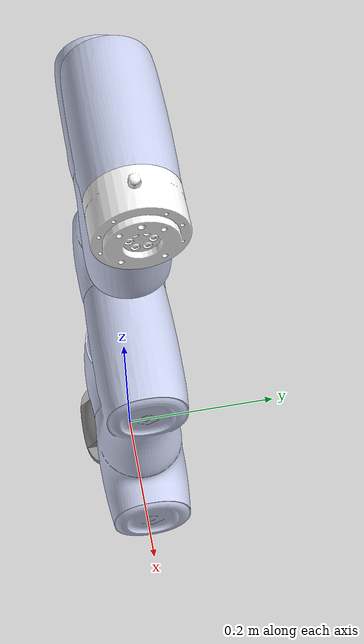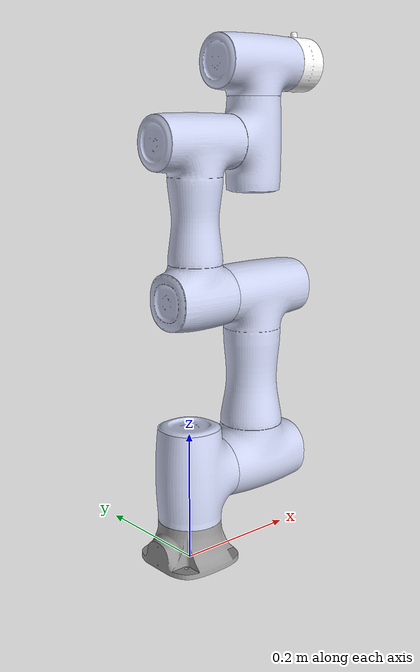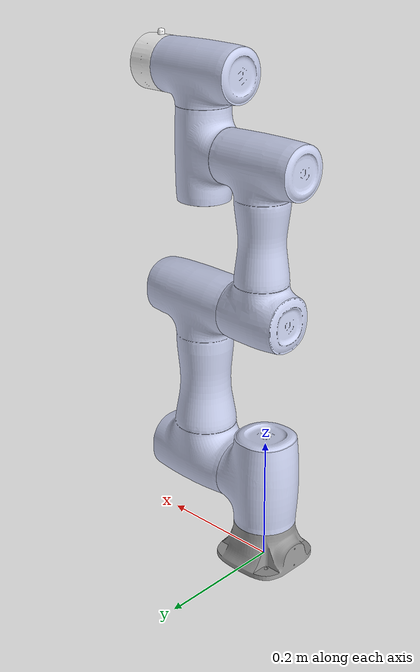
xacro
<?xml version="1.0"?>
<robot xmlns:xacro="http://www.ros.org/wiki/xacro" name="cr3af_robot">
    <xacro:arg name="initial_positions_file" default="initial_positions.yaml" />

    <!-- Import cr3af_robot urdf file -->
    <xacro:include filename="$(find dobot_rviz)/urdf/cr3af_robot.urdf" />

    <!-- Import control_xacro -->
    <xacro:include filename="cr3af_robot.ros2_control.xacro" />

    <xacro:cr3af_robot_ros2_control name="FakeSystem" initial_positions_file="$(arg initial_positions_file)"/>

</robot>

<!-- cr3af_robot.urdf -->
<robot
  name="cr3af_robot">
  <link name="dummy_link" />
  <link
    name="base_link">
    <inertial>
      <origin
        xyz="-0.0015345 -1.0554E-05 0.028348"
        rpy="0 0 0" />
      <mass
        value="0.74" />
      <inertia
        ixx="0.00074849"
        ixy="5.9724E-08"
        ixz="-1.3251E-06"
        iyy="0.00079951"
        iyz="1.6433E-07"
        izz="0.0010879" />
    </inertial>
    <visual>
      <origin
        xyz="0 0 0"
        rpy="0 0 0" />
      <geometry>
        <mesh
          filename="package://dobot_rviz/meshes/cr3af/base_link.STL" />
      </geometry>
      <material
        name="">
        <color
          rgba="0.59216 0.59216 0.59216 1" />
      </material>
    </visual>
    <collision>
      <origin
        xyz="0 0 0"
        rpy="0 0 0" />
      <geometry>
        <mesh
          filename="package://dobot_rviz/meshes/cr3af/base_link.STL" />
      </geometry>
    </collision>
  </link>
  <joint name="dummy_joint" type="fixed">
      <parent link="dummy_link" />
      <child  link="base_link" />
    </joint>
  <link
    name="Link1">
    <inertial>
      <origin
        xyz="0.0039443 -3.6376E-05 0.073442"
        rpy="0 0 0" />
      <mass
        value="4.45" />
      <inertia
        ixx="0.0030782"
        ixy="-1.8164E-06"
        ixz="-1.8902E-05"
        iyy="0.0031919"
        iyz="3.5177E-07"
        izz="0.001909" />
    </inertial>
    <visual>
      <origin
        xyz="0 0 0"
        rpy="0 0 0" />
      <geometry>
        <mesh
          filename="package://dobot_rviz/meshes/cr3af/J1.STL" />
      </geometry>
      <material
        name="">
        <color
          rgba="0.79216 0.81961 0.93333 1" />
      </material>
    </visual>
    <collision>
      <origin
        xyz="0 0 0"
        rpy="0 0 0" />
      <geometry>
        <mesh
          filename="package://dobot_rviz/meshes/cr3af/J1.STL" />
      </geometry>
    </collision>
  </link>
  <joint
    name="joint1"
    type="revolute">
    <origin
      xyz="0 0 0.065"
      rpy="0 0 0" />
    <parent
      link="base_link" />
    <child
      link="Link1" />
    <axis
      xyz="0 0 1" />
    <limit
      lower="-6.2831"
      upper="6.2831"
      effort="100"
      velocity="3.14" />
  </joint>
  <link
    name="Link2">
    <inertial>
      <origin
        xyz="0.074174 1.4072E-05 0.12923"
        rpy="0 0 0" />
      <mass
        value="8.74" />
      <inertia
        ixx="0.015046"
        ixy="-3.3667E-07"
        ixz="0.00063538"
        iyy="0.017734"
        iyz="1.7848E-06"
        izz="0.0066528" />
    </inertial>
    <visual>
      <origin
        xyz="0 0 0"
        rpy="0 0 0" />
      <geometry>
        <mesh
          filename="package://dobot_rviz/meshes/cr3af/J2.STL" />
      </geometry>
      <material
        name="">
        <color
          rgba="0.79216 0.81961 0.93333 1" />
      </material>
    </visual>
    <collision>
      <origin
        xyz="0 0 0"
        rpy="0 0 0" />
      <geometry>
        <mesh
          filename="package://dobot_rviz/meshes/cr3af/J2.STL" />
      </geometry>
    </collision>
  </link>
  <joint
    name="joint2"
    type="revolute">
    <origin
      xyz="0.059 0 0.0698"
      rpy="0 0 0" />
    <parent
      link="Link1" />
    <child
      link="Link2" />
    <axis
      xyz="1 0 0" />
    <limit
      lower="-6.2831"
      upper="6.2831"
      effort="100"
      velocity="3.14" />
  </joint>
  <link
    name="Link3">
    <inertial>
      <origin
        xyz="-0.0626 6.0771E-07 -0.34381"
        rpy="0 0 0" />
      <mass
        value="3.14" />
      <inertia
        ixx="0.003139"
        ixy="2.60E-07"
        ixz="-0.000151"
        iyy="0.023669"
        iyz="3.67E-08"
        izz="0.022579" />
    </inertial>
    <visual>
      <origin
        xyz="0 0 0"
        rpy="0 0 0" />
      <geometry>
        <mesh
          filename="package://dobot_rviz/meshes/cr3af/J3.STL" />
      </geometry>
      <material
        name="">
        <color
          rgba="0.79216 0.81961 0.93333 1" />
      </material>
    </visual>
    <collision>
      <origin
        xyz="0 0 0"
        rpy="0 0 0" />
      <geometry>
        <mesh
          filename="package://dobot_rviz/meshes/cr3af/J3.STL" />
      </geometry>
    </collision>
  </link>
  <joint
    name="joint3"
    type="revolute">
    <origin
      xyz="0.0036 0 0.27401"
      rpy="0 0 0" />
    <parent
      link="Link2" />
    <child
      link="Link3" />
    <axis
      xyz="1 0 0" />
    <limit
      lower="-2.7052"
      upper="2.7052"
      effort="100"
      velocity="3.89" />
  </joint>
  <link
    name="Link4">
    <inertial>
      <origin
        xyz="0.046127 2.7026E-08 -0.0034506"
        rpy="0 0 0" />
      <mass
        value="2.1" />
      <inertia
        ixx="0.0016946"
        ixy="-3.1265E-09"
        ixz="-9.3105E-06"
        iyy="0.0017337"
        iyz="5.4022E-09"
        izz="0.0008225" />
    </inertial>
    <visual>
      <origin
        xyz="0 0 0"
        rpy="0 0 0" />
      <geometry>
        <mesh
          filename="package://dobot_rviz/meshes/cr3af/J4.STL" />
      </geometry>
      <material
        name="">
        <color
          rgba="0.79216 0.81961 0.93333 1" />
      </material>
    </visual>
    <collision>
      <origin
        xyz="0 0 0"
        rpy="0 0 0" />
      <geometry>
        <mesh
          filename="package://dobot_rviz/meshes/cr3af/J4.STL" />
      </geometry>
    </collision>
  </link>
  <joint
    name="joint4"
    type="revolute">
    <origin
      xyz="0.0167 0 0.22999"
      rpy="0 0 0" />
    <parent
      link="Link3" />
    <child
      link="Link4" />
    <axis
      xyz="1 0 0" />
    <limit
      lower="-6.2831"
      upper="6.2831"
      effort="100"
      velocity="3.89" />
  </joint>
  <link
    name="Link5">
    <inertial>
      <origin
        xyz="-0.0033307 -1.2849E-07 0.046132"
        rpy="0 0 0" />
      <mass
        value="2.1" />
      <inertia
        ixx="0.0008236"
        ixy="-5.4869E-09"
        ixz="-9.0189E-06"
        iyy="0.0017414"
        iyz="3.5935E-09"
        izz="0.0017023" />
    </inertial>
    <visual>
      <origin
        xyz="0 0 0"
        rpy="0 0 0" />
      <geometry>
        <mesh
          filename="package://dobot_rviz/meshes/cr3af/J5.STL" />
      </geometry>
      <material
        name="">
        <color
          rgba="0.79216 0.81961 0.93333 1" />
      </material>
    </visual>
    <collision>
      <origin
        xyz="0 0 0"
        rpy="0 0 0" />
      <geometry>
        <mesh
          filename="package://dobot_rviz/meshes/cr3af/J5.STL" />
      </geometry>
    </collision>
  </link>
  <joint
    name="joint5"
    type="revolute">
    <origin
      xyz="0.049 0 0.067"
      rpy="0 0 0" />
    <parent
      link="Link4" />
    <child
      link="Link5" />
    <axis
      xyz="0 0 1" />
    <limit
      lower="-6.2831"
      upper="6.2831"
      effort="100"
      velocity="3.89" />
  </joint>
  <link
    name="Link6">
    <inertial>
      <origin
        xyz="0.022777 -1.019E-08 8.8138E-05"
        rpy="0 0 0" />
      <mass
        value="0.29" />
      <inertia
        ixx="0.00019903"
        ixy="-1.1106E-12"
        ixz="-2.2857E-07"
        iyy="0.0001425"
        iyz="-1.2175E-10"
        izz="0.00014123" />
    </inertial>
    <visual>
      <origin
        xyz="0 0 0"
        rpy="0 0 0" />
      <geometry>
        <mesh
          filename="package://dobot_rviz/meshes/cr3af/J6.STL" />
      </geometry>
      <material
        name="">
        <color
          rgba="1 1 1 1" />
      </material>
    </visual>
    <collision>
      <origin
        xyz="0 0 0"
        rpy="0 0 0" />
      <geometry>
        <mesh
          filename="package://dobot_rviz/meshes/cr3af/J6.STL" />
      </geometry>
    </collision>
  </link>
  <joint
    name="joint6"
    type="revolute">
    <origin
      xyz="0.0667 0 0.049"
      rpy="0 0 0" />
    <parent
      link="Link5" />
    <child
      link="Link6" />
    <axis
      xyz="1 0 0" />
    <limit
      lower="-6.2831"
      upper="6.2831"
      effort="100"
      velocity="3.89" />
  </joint>
  <link name="tool0"/>
  <joint name="tool_joint" type="fixed">
    <origin xyz="0 0 0" rpy="4.7124 0 3.14159" />
    <parent link="Link6" />
    <child link="tool0" />
  </joint>
</robot>
